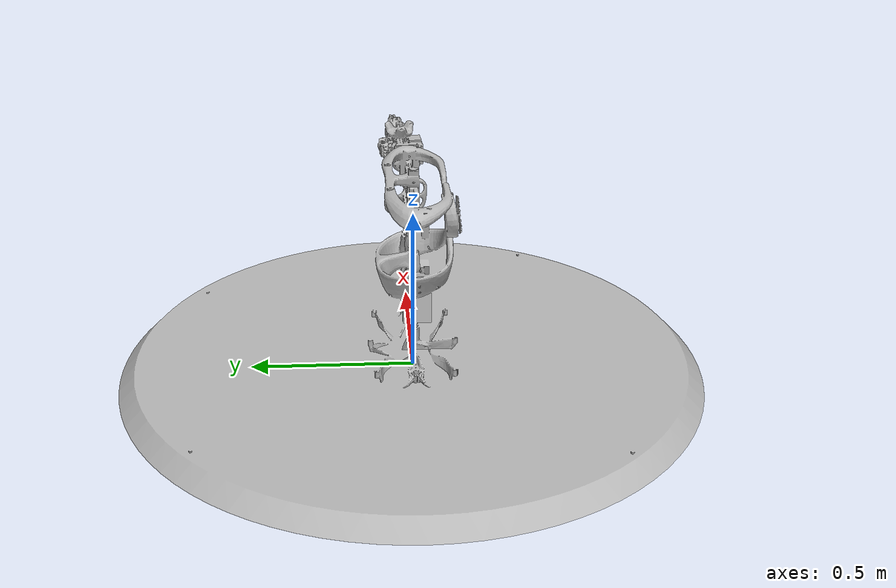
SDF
<?xml version="1.0" ?>
<sdf version="1.6">
	<model name="roboy_left_arm">
		<link name="torso">
			<self_collide>false</self_collide>
			<pose frame="">0.0 0.0 0.0 0.0 -0.0 0.0</pose>
			<inertial>
				<pose frame="">0.0 0.0 0.0 0 0 0</pose>
				<mass>1058.5261328242646</mass>
				<inertia>
					<ixx>197.5115682052185</ixx>
					<ixy>0.02833631579475511</ixy>
					<ixz>-0.07885852976731042</ixz>
					<iyy>197.74193156119028</iyy>
					<iyz>0.061768206760304645</iyz>
					<izz>387.32375410894196</izz>
				</inertia>
			</inertial>
			<collision name="torso_collision">
				<geometry>
					<mesh>
						<uri>model://roboy_left_arm/meshes/CAD/torso.stl</uri>
						<scale>0.001 0.001 0.001</scale>
					</mesh>
				</geometry>
			</collision>
			<visual name="torso_visual">
				<geometry>
					<mesh>
						<uri>model://roboy_left_arm/meshes/CAD/torso.stl</uri>
						<scale>0.001 0.001 0.001</scale>
					</mesh>
				</geometry>
			</visual>
		</link>
		<link name="upper_arm_left">
			<self_collide>false</self_collide>
			<pose frame="">0.44548503672709056 0.015677119604354577 0.5504087035914444 0.0 -0.0 0.0</pose>
			<inertial>
				<pose frame="">0.0 0.0 0.0 0 0 0</pose>
				<mass>1.7197029651143656</mass>
				<inertia>
					<ixx>0.5236612629317952</ixx>
					<ixy>-0.012243845687653165</ixy>
					<ixz>-0.014784395055717551</ixz>
					<iyy>0.8676970843907268</iyy>
					<iyz>-0.42197396534932613</iyz>
					<izz>0.3486566233345514</izz>
				</inertia>
			</inertial>
			<collision name="upper_arm_left_collision">
				<geometry>
					<mesh>
						<uri>model://roboy_left_arm/meshes/CAD/upper_arm_left.stl</uri>
						<scale>0.001 0.001 0.001</scale>
					</mesh>
				</geometry>
			</collision>
			<visual name="upper_arm_left_visual">
				<geometry>
					<mesh>
						<uri>model://roboy_left_arm/meshes/CAD/upper_arm_left.stl</uri>
						<scale>0.001 0.001 0.001</scale>
					</mesh>
				</geometry>
			</visual>
		</link>
		<link name="lower_arm_left">
			<self_collide>false</self_collide>
			<pose frame="">0.6505553288428344 0.026266666405711098 0.546008363520984 0.0 -0.0 0.0</pose>
			<inertial>
				<pose frame="">0.0 0.0 0.0 0 0 0</pose>
				<mass>0.2532515779247888</mass>
				<inertia>
					<ixx>0.07581713728944303</ixx>
					<ixy>-0.0043598119973456695</ixy>
					<ixz>-0.003632932216003931</ixz>
					<iyy>0.18349824316572586</iyy>
					<iyz>-0.08994380872070022</iyz>
					<izz>0.10815959891982853</izz>
				</inertia>
			</inertial>
			<collision name="lower_arm_left_collision">
				<geometry>
					<mesh>
						<uri>model://roboy_left_arm/meshes/CAD/lower_arm_left.stl</uri>
						<scale>0.001 0.001 0.001</scale>
					</mesh>
				</geometry>
			</collision>
			<visual name="lower_arm_left_visual">
				<geometry>
					<mesh>
						<uri>model://roboy_left_arm/meshes/CAD/lower_arm_left.stl</uri>
						<scale>0.001 0.001 0.001</scale>
					</mesh>
				</geometry>
			</visual>
		</link>
		<link name="sphere_link1">
			<self_collide>false</self_collide>
			<pose frame="">0.29218005222734217 0.0076909234120174945 0.5486137870423161 0.0 -0.0 0.0</pose>
			<inertial>
				<pose frame="">0.0 0.0 0.0 0 0 0</pose>
				<mass>0.005539188914012312</mass>
				<inertia>
					<ixx>0.0016682043456314852</ixx>
					<ixy>-1.2447301710716787e-05</ixy>
					<ixz>-2.337175803415757e-05</ixz>
					<iyy>0.0021407527251650965</iyy>
					<iyz>-0.0008878987752053533</iyz>
					<izz>0.00047391143192452266</izz>
				</inertia>
			</inertial>
			<collision name="sphere_link1_collision">
				<geometry>
					<mesh>
						<uri>model://roboy_left_arm/meshes/CAD/sphere_link1.stl</uri>
						<scale>0.001 0.001 0.001</scale>
					</mesh>
				</geometry>
			</collision>
			<visual name="sphere_link1_visual">
				<geometry>
					<mesh>
						<uri>model://roboy_left_arm/meshes/CAD/sphere_link1.stl</uri>
						<scale>0.001 0.001 0.001</scale>
					</mesh>
				</geometry>
			</visual>
		</link>
		<link name="sphere_link2">
			<self_collide>false</self_collide>
			<pose frame="">0.2921800660285934 0.007690617219246416 0.548613775294559 0.0 -0.0 0.0</pose>
			<inertial>
				<pose frame="">0.0 0.0 0.0 0 0 0</pose>
				<mass>0.0037129164188536433</mass>
				<inertia>
					<ixx>0.0011180420304301233</ixx>
					<ixy>-8.343090627517445e-06</ixy>
					<ixz>-1.566545731175107e-05</ixz>
					<iyy>0.001434791103744674</iyy>
					<iyz>-0.0005951582581932413</iyz>
					<izz>0.00031750798009071954</izz>
				</inertia>
			</inertial>
			<collision name="sphere_link2_collision">
				<geometry>
					<mesh>
						<uri>model://roboy_left_arm/meshes/CAD/sphere_link2.stl</uri>
						<scale>0.001 0.001 0.001</scale>
					</mesh>
				</geometry>
			</collision>
			<visual name="sphere_link2_visual">
				<geometry>
					<mesh>
						<uri>model://roboy_left_arm/meshes/CAD/sphere_link2.stl</uri>
						<scale>0.001 0.001 0.001</scale>
					</mesh>
				</geometry>
			</visual>
		</link>
		<joint name="sphere_axis0" type="revolute">
			<parent>torso</parent>
			<child>sphere_link1</child>
			<pose frame="">3.9283447250682e-09 -1.669784760338633e-07 -3.766154478057615e-08 0 0 0</pose>
			<axis>
				<xyz>1 0 0</xyz>
				<limit>
					<lower>-3.141592653589793</lower>
					<upper>3.141592653589793</upper>
				</limit>
				<use_parent_model_frame>0</use_parent_model_frame>
			</axis>
		</joint>
		<joint name="sphere_axis1" type="revolute">
			<parent>sphere_link1</parent>
			<child>sphere_link2</child>
			<pose frame="">-9.872906758801037e-09 1.3921429502405937e-07 -2.5913787879972005e-08 0 0 0</pose>
			<axis>
				<xyz>0 1 0</xyz>
				<limit>
					<lower>-3.141592653589793</lower>
					<upper>3.141592653589793</upper>
				</limit>
				<use_parent_model_frame>0</use_parent_model_frame>
			</axis>
		</joint>
		<joint name="sphere_axis2" type="revolute">
			<parent>sphere_link2</parent>
			<child>upper_arm_left</child>
			<pose frame="">-0.1533049805143952 -0.00798636428666673 -0.0017949541857401386 0 0 0</pose>
			<axis>
				<xyz>0 0 1</xyz>
				<limit>
					<lower>-3.141592653589793</lower>
					<upper>3.141592653589793</upper>
				</limit>
				<use_parent_model_frame>0</use_parent_model_frame>
			</axis>
		</joint>
		<joint name="elbow_left" type="revolute">
			<parent>upper_arm_left</parent>
			<child>lower_arm_left</child>
			<pose frame="">-0.0692132944768732 -0.009283175507041967 -0.018549647939352668 0 0 0</pose>
			<axis>
				<xyz>0.011188426489531632 0.022909252225329937 0.9996749398055198</xyz>
				<limit>
					<lower>-1.5707963267948966</lower>
					<upper>0.0</upper>
				</limit>
				<use_parent_model_frame>0</use_parent_model_frame>
			</axis>
		</joint>
		<plugin filename="libmusc_plugin.so" name="musc_plugin">
			<myoMuscle name="motor0">
				<link name="torso">
					<viaPoint type="FIXPOINT">0.28894109223784714 -0.010689615277494022 0.57625463538261</viaPoint>
				</link>
				<link name="upper_arm_left">
					<viaPoint type="FIXPOINT">-0.08167484368455127 -0.023230826344000876 0.021330085868142844</viaPoint>
				</link>
			</myoMuscle>
			<myoMuscle name="motor1">
				<link name="torso">
					<viaPoint type="FIXPOINT">0.24003539451940256 -0.02550943966353709 0.46729404948318215</viaPoint>
				</link>
				<link name="upper_arm_left">
					<viaPoint type="FIXPOINT">-0.08221384223868185 -0.022557207923814993 -0.019520292167990404</viaPoint>
				</link>
			</myoMuscle>
			<myoMuscle name="motor2">
				<link name="torso">
					<viaPoint type="FIXPOINT">0.2512180133128362 -0.028667405657345716 0.5145590997255798</viaPoint>
				</link>
				<link name="upper_arm_left">
					<viaPoint type="FIXPOINT">-0.09315689098159317 -0.018034558391674706 0.00342791176726692</viaPoint>
				</link>
			</myoMuscle>
			<myoMuscle name="motor3">
				<link name="torso">
					<viaPoint type="FIXPOINT">0.28063665292590684 -0.02853440033031779 0.5580004259562042</viaPoint>
				</link>
				<link name="upper_arm_left">
					<viaPoint type="FIXPOINT">-0.0815341736821481 -0.02683873672942361 0.0178775807163138</viaPoint>
				</link>
			</myoMuscle>
			<myoMuscle name="motor4">
				<link name="torso">
					<viaPoint type="FIXPOINT">0.3033935027253936 5.332682350402541e-15 0.596144953020783</viaPoint>
				</link>
				<link name="upper_arm_left">
					<viaPoint type="FIXPOINT">-0.07459462931973519 -0.0033190841201467826 0.027891060751448364</viaPoint>
				</link>
			</myoMuscle>
			<myoMuscle name="motor5">
				<link name="torso">
					<viaPoint type="FIXPOINT">0.2769871340021271 0.04289909901328503 0.5564042514238003</viaPoint>
				</link>
				<link name="upper_arm_left">
					<viaPoint type="FIXPOINT">-0.07566224485838567 0.01586165710205559 0.02036692169845118</viaPoint>
				</link>
			</myoMuscle>
			<myoMuscle name="motor6">
				<link name="torso">
					<viaPoint type="FIXPOINT">0.247561326172623 0.04290640006489306 0.512959790060908</viaPoint>
				</link>
				<link name="upper_arm_left">
					<viaPoint type="FIXPOINT">-0.09450356803155345 0.008324492259513096 0.002838921367323195</viaPoint>
				</link>
			</myoMuscle>
			<myoMuscle name="motor7">
				<link name="torso">
					<viaPoint type="FIXPOINT">0.23617466540192175 0.050058161611911685 0.465605498848829</viaPoint>
				</link>
				<link name="upper_arm_left">
					<viaPoint type="FIXPOINT">-0.08417374243042133 0.016581048766428182 -0.01718494080437857</viaPoint>
				</link>
			</myoMuscle>
			<myoMuscle name="motor8">
				<link name="torso">
					<viaPoint type="FIXPOINT">0.2865401700456322 0.02607560577031752 0.576140812491758</viaPoint>
				</link>
				<link name="upper_arm_left">
					<viaPoint type="FIXPOINT">-0.07577503574046446 0.017659916328714095 0.018633848713647153</viaPoint>
				</link>
			</myoMuscle>
			<myoMuscle name="motor9">
				<link name="upper_arm_left">
					<viaPoint type="FIXPOINT">0.0891007266034221 -0.03020666575078449 -0.005058145977903763</viaPoint>
				</link>
				<link name="lower_arm_left">
					<viaPoint type="FIXPOINT">-0.017016216799642124 -0.03582645603695799 -0.0008198011299129604</viaPoint>
				</link>
			</myoMuscle>
			<myoMuscle name="motor10">
				<link name="upper_arm_left">
					<viaPoint type="FIXPOINT">0.0855832210185823 0.03864291029866656 -0.006596583012387498</viaPoint>
				</link>
				<link name="lower_arm_left">
					<viaPoint type="FIXPOINT">-0.013567147342794144 0.032980044748423414 -0.0024526553010610287</viaPoint>
				</link>
			</myoMuscle>
		</plugin>
	</model>
</sdf>
